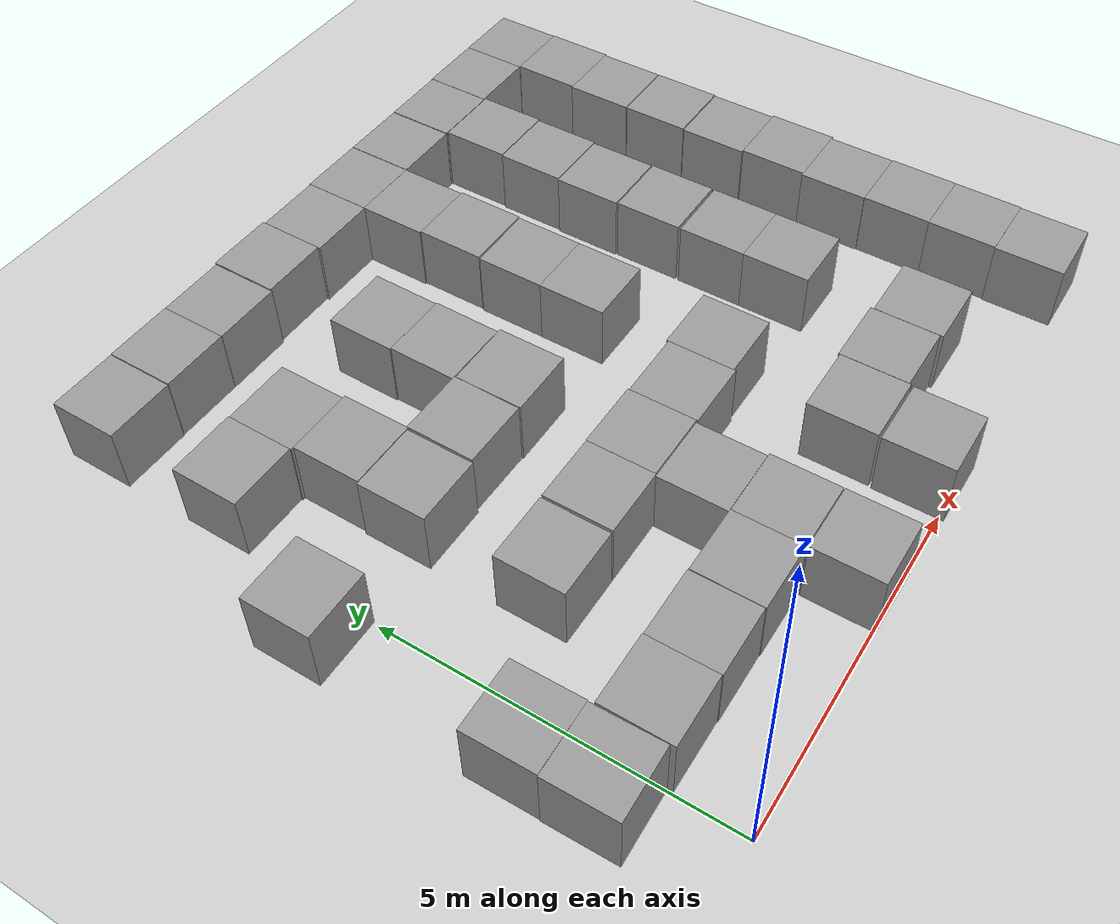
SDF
<sdf version="1.7">
 <world name="default">
  <model name="ground_plane">
   <static>1</static>
   <link name="link">
    <collision name="collision">
     <geometry><plane><normal>0 0 1</normal><size>100 100</size></plane></geometry>
     <surface><friction><ode><mu>100</mu><mu2>50</mu2></ode></friction></surface>
    </collision>
    <visual name="visual">
     <cast_shadows>0</cast_shadows>
     <geometry><plane><normal>0 0 1</normal><size>100 100</size></plane></geometry>
     <material>
      <script><uri>file://media/materials/scripts/gazebo.material</uri><name>Gazebo/Grey</name></script>
     </material>
    </visual>
   </link>
  </model>
  <model name="unit_box">
   <pose>9.53051 9.54455 0.5 0 -0 4.5e-05</pose>
   <link name="link">
    <inertial>
     <mass>1</mass>
     <inertia>
      <ixx>0.166667</ixx>
      <ixy>0</ixy>
      <ixz>0</ixz>
      <iyy>0.166667</iyy>
      <iyz>0</iyz>
      <izz>0.166667</izz>
     </inertia>
    </inertial>
    <collision name="collision"><geometry><box><size>1 1 1</size></box></geometry></collision>
    <visual name="visual">
     <geometry><box><size>1 1 1</size></box></geometry>
     <material>
      <script><name>Gazebo/Grey</name><uri>file://media/materials/scripts/gazebo.material</uri></script>
     </material>
    </visual>
   </link>
  </model>
  <model name="unit_box_0">
   <pose>8.5305 9.54105 0.5 0 -0 3.1e-05</pose>
   <link name="link">
    <inertial>
     <mass>1</mass>
     <inertia>
      <ixx>0.166667</ixx>
      <ixy>0</ixy>
      <ixz>0</ixz>
      <iyy>0.166667</iyy>
      <iyz>0</iyz>
      <izz>0.166667</izz>
     </inertia>
    </inertial>
    <collision name="collision"><geometry><box><size>1 1 1</size></box></geometry></collision>
    <visual name="visual">
     <geometry><box><size>1 1 1</size></box></geometry>
     <material>
      <script><name>Gazebo/Grey</name><uri>file://media/materials/scripts/gazebo.material</uri></script>
     </material>
    </visual>
   </link>
  </model>
  <model name="unit_box_1">
   <pose>7.52834 9.52677 0.5 0 -0 0</pose>
   <link name="link">
    <inertial>
     <mass>1</mass>
     <inertia>
      <ixx>0.166667</ixx>
      <ixy>0</ixy>
      <ixz>0</ixz>
      <iyy>0.166667</iyy>
      <iyz>0</iyz>
      <izz>0.166667</izz>
     </inertia>
    </inertial>
    <collision name="collision"><geometry><box><size>1 1 1</size></box></geometry></collision>
    <visual name="visual">
     <geometry><box><size>1 1 1</size></box></geometry>
     <material>
      <script><name>Gazebo/Grey</name><uri>file://media/materials/scripts/gazebo.material</uri></script>
     </material>
    </visual>
   </link>
  </model>
  <model name="unit_box_2">
   <pose>5.51039 9.52199 0.5 0 0 -0.000132</pose>
   <link name="link">
    <inertial>
     <mass>1</mass>
     <inertia>
      <ixx>0.166667</ixx>
      <ixy>0</ixy>
      <ixz>0</ixz>
      <iyy>0.166667</iyy>
      <iyz>0</iyz>
      <izz>0.166667</izz>
     </inertia>
    </inertial>
    <collision name="collision"><geometry><box><size>1 1 1</size></box></geometry></collision>
    <visual name="visual">
     <geometry><box><size>1 1 1</size></box></geometry>
     <material>
      <script><name>Gazebo/Grey</name><uri>file://media/materials/scripts/gazebo.material</uri></script>
     </material>
    </visual>
   </link>
  </model>
  <model name="unit_box_3">
   <pose>9.54045 8.54454 0.5 0 -0 5.8e-05</pose>
   <link name="link">
    <inertial>
     <mass>1</mass>
     <inertia>
      <ixx>0.166667</ixx>
      <ixy>0</ixy>
      <ixz>0</ixz>
      <iyy>0.166667</iyy>
      <iyz>0</iyz>
      <izz>0.166667</izz>
     </inertia>
    </inertial>
    <collision name="collision"><geometry><box><size>1 1 1</size></box></geometry></collision>
    <visual name="visual">
     <geometry><box><size>1 1 1</size></box></geometry>
     <material>
      <script><name>Gazebo/Grey</name><uri>file://media/materials/scripts/gazebo.material</uri></script>
     </material>
    </visual>
   </link>
  </model>
  <model name="unit_box_4">
   <pose>9.51774 7.54453 0.5 0 -0 4e-05</pose>
   <link name="link">
    <inertial>
     <mass>1</mass>
     <inertia>
      <ixx>0.166667</ixx>
      <ixy>0</ixy>
      <ixz>0</ixz>
      <iyy>0.166667</iyy>
      <iyz>0</iyz>
      <izz>0.166667</izz>
     </inertia>
    </inertial>
    <collision name="collision"><geometry><box><size>1 1 1</size></box></geometry></collision>
    <visual name="visual">
     <geometry><box><size>1 1 1</size></box></geometry>
     <material>
      <script><name>Gazebo/Grey</name><uri>file://media/materials/scripts/gazebo.material</uri></script>
     </material>
    </visual>
   </link>
  </model>
  <model name="unit_box_5">
   <pose>9.51835 6.53227 0.5 0 -0 0</pose>
   <link name="link">
    <inertial>
     <mass>1</mass>
     <inertia>
      <ixx>0.166667</ixx>
      <ixy>0</ixy>
      <ixz>0</ixz>
      <iyy>0.166667</iyy>
      <iyz>0</iyz>
      <izz>0.166667</izz>
     </inertia>
    </inertial>
    <collision name="collision"><geometry><box><size>1 1 1</size></box></geometry></collision>
    <visual name="visual">
     <geometry><box><size>1 1 1</size></box></geometry>
     <material>
      <script><name>Gazebo/Grey</name><uri>file://media/materials/scripts/gazebo.material</uri></script>
     </material>
    </visual>
   </link>
  </model>
  <model name="unit_box_6">
   <pose>5.50726 8.52121 0.5 0 0 -0.001691</pose>
   <link name="link">
    <inertial>
     <mass>1</mass>
     <inertia>
      <ixx>0.166667</ixx>
      <ixy>0</ixy>
      <ixz>0</ixz>
      <iyy>0.166667</iyy>
      <iyz>0</iyz>
      <izz>0.166667</izz>
     </inertia>
    </inertial>
    <collision name="collision"><geometry><box><size>1 1 1</size></box></geometry></collision>
    <visual name="visual">
     <geometry><box><size>1 1 1</size></box></geometry>
     <material>
      <script><name>Gazebo/Grey</name><uri>file://media/materials/scripts/gazebo.material</uri></script>
     </material>
    </visual>
   </link>
  </model>
  <model name="unit_box_7">
   <pose>7.55389 8.51857 0.5 0 -0 0</pose>
   <link name="link">
    <inertial>
     <mass>1</mass>
     <inertia>
      <ixx>0.166667</ixx>
      <ixy>0</ixy>
      <ixz>0</ixz>
      <iyy>0.166667</iyy>
      <iyz>0</iyz>
      <izz>0.166667</izz>
     </inertia>
    </inertial>
    <collision name="collision"><geometry><box><size>1 1 1</size></box></geometry></collision>
    <visual name="visual">
     <geometry><box><size>1 1 1</size></box></geometry>
     <material>
      <script><name>Gazebo/Grey</name><uri>file://media/materials/scripts/gazebo.material</uri></script>
     </material>
    </visual>
   </link>
  </model>
  <model name="unit_box_8">
   <pose>6.51642 9.52235 0.5 0 -0 0</pose>
   <link name="link">
    <inertial>
     <mass>1</mass>
     <inertia>
      <ixx>0.166667</ixx>
      <ixy>0</ixy>
      <ixz>0</ixz>
      <iyy>0.166667</iyy>
      <iyz>0</iyz>
      <izz>0.166667</izz>
     </inertia>
    </inertial>
    <collision name="collision"><geometry><box><size>1 1 1</size></box></geometry></collision>
    <visual name="visual">
     <geometry><box><size>1 1 1</size></box></geometry>
     <material>
      <script><name>Gazebo/Grey</name><uri>file://media/materials/scripts/gazebo.material</uri></script>
     </material>
    </visual>
   </link>
  </model>
  <model name="unit_box_9">
   <pose>7.53128 7.50762 0.5 0 -0 0</pose>
   <link name="link">
    <inertial>
     <mass>1</mass>
     <inertia>
      <ixx>0.166667</ixx>
      <ixy>0</ixy>
      <ixz>0</ixz>
      <iyy>0.166667</iyy>
      <iyz>0</iyz>
      <izz>0.166667</izz>
     </inertia>
    </inertial>
    <collision name="collision"><geometry><box><size>1 1 1</size></box></geometry></collision>
    <visual name="visual">
     <geometry><box><size>1 1 1</size></box></geometry>
     <material>
      <script><name>Gazebo/Grey</name><uri>file://media/materials/scripts/gazebo.material</uri></script>
     </material>
    </visual>
   </link>
  </model>
  <model name="unit_box_10">
   <pose>7.50856 6.49657 0.5 0 -0 0</pose>
   <link name="link">
    <inertial>
     <mass>1</mass>
     <inertia>
      <ixx>0.166667</ixx>
      <ixy>0</ixy>
      <ixz>0</ixz>
      <iyy>0.166667</iyy>
      <iyz>0</iyz>
      <izz>0.166667</izz>
     </inertia>
    </inertial>
    <collision name="collision"><geometry><box><size>1 1 1</size></box></geometry></collision>
    <visual name="visual">
     <geometry><box><size>1 1 1</size></box></geometry>
     <material>
      <script><name>Gazebo/Grey</name><uri>file://media/materials/scripts/gazebo.material</uri></script>
     </material>
    </visual>
   </link>
  </model>
  <model name="unit_box_11">
   <pose>5.52886 7.52111 0.5 0 0 -0.001804</pose>
   <link name="link">
    <inertial>
     <mass>1</mass>
     <inertia>
      <ixx>0.166667</ixx>
      <ixy>0</ixy>
      <ixz>0</ixz>
      <iyy>0.166667</iyy>
      <iyz>0</iyz>
      <izz>0.166667</izz>
     </inertia>
    </inertial>
    <collision name="collision"><geometry><box><size>1 1 1</size></box></geometry></collision>
    <visual name="visual">
     <geometry><box><size>1 1 1</size></box></geometry>
     <material>
      <script><name>Gazebo/Grey</name><uri>file://media/materials/scripts/gazebo.material</uri></script>
     </material>
    </visual>
   </link>
  </model>
  <model name="unit_box_12">
   <pose>4.50925 9.50784 0.5 -0 -0 -0.002381</pose>
   <link name="link">
    <inertial>
     <mass>1</mass>
     <inertia>
      <ixx>0.166667</ixx>
      <ixy>0</ixy>
      <ixz>0</ixz>
      <iyy>0.166667</iyy>
      <iyz>0</iyz>
      <izz>0.166667</izz>
     </inertia>
    </inertial>
    <collision name="collision"><geometry><box><size>1 1 1</size></box></geometry></collision>
    <visual name="visual">
     <geometry><box><size>1 1 1</size></box></geometry>
     <material>
      <script><name>Gazebo/Grey</name><uri>file://media/materials/scripts/gazebo.material</uri></script>
     </material>
    </visual>
   </link>
  </model>
  <model name="unit_box_13">
   <pose>5.50623 5.49299 0.5 0 0 -1.9e-05</pose>
   <link name="link">
    <inertial>
     <mass>1</mass>
     <inertia>
      <ixx>0.166667</ixx>
      <ixy>0</ixy>
      <ixz>0</ixz>
      <iyy>0.166667</iyy>
      <iyz>0</iyz>
      <izz>0.166667</izz>
     </inertia>
    </inertial>
    <collision name="collision"><geometry><box><size>1 1 1</size></box></geometry></collision>
    <visual name="visual">
     <geometry><box><size>1 1 1</size></box></geometry>
     <material>
      <script><name>Gazebo/Grey</name><uri>file://media/materials/scripts/gazebo.material</uri></script>
     </material>
    </visual>
   </link>
  </model>
  <model name="unit_box_14">
   <pose>3.4812 7.48549 0.5 0 0 -0.010022</pose>
   <link name="link">
    <inertial>
     <mass>1</mass>
     <inertia>
      <ixx>0.166667</ixx>
      <ixy>0</ixy>
      <ixz>0</ixz>
      <iyy>0.166667</iyy>
      <iyz>0</iyz>
      <izz>0.166667</izz>
     </inertia>
    </inertial>
    <collision name="collision"><geometry><box><size>1 1 1</size></box></geometry></collision>
    <visual name="visual">
     <geometry><box><size>1 1 1</size></box></geometry>
     <material>
      <script><name>Gazebo/Grey</name><uri>file://media/materials/scripts/gazebo.material</uri></script>
     </material>
    </visual>
   </link>
  </model>
  <model name="unit_box_15">
   <pose>3.48987 6.48531 0.5 0 0 -0.010022</pose>
   <link name="link">
    <inertial>
     <mass>1</mass>
     <inertia>
      <ixx>0.166667</ixx>
      <ixy>0</ixy>
      <ixz>0</ixz>
      <iyy>0.166667</iyy>
      <iyz>0</iyz>
      <izz>0.166667</izz>
     </inertia>
    </inertial>
    <collision name="collision"><geometry><box><size>1 1 1</size></box></geometry></collision>
    <visual name="visual">
     <geometry><box><size>1 1 1</size></box></geometry>
     <material>
      <script><name>Gazebo/Grey</name><uri>file://media/materials/scripts/gazebo.material</uri></script>
     </material>
    </visual>
   </link>
  </model>
  <model name="unit_box_16">
   <pose>3.50929 9.54496 0.5 0 0 -0.002316</pose>
   <link name="link">
    <inertial>
     <mass>1</mass>
     <inertia>
      <ixx>0.166667</ixx>
      <ixy>0</ixy>
      <ixz>0</ixz>
      <iyy>0.166667</iyy>
      <iyz>0</iyz>
      <izz>0.166667</izz>
     </inertia>
    </inertial>
    <collision name="collision"><geometry><box><size>1 1 1</size></box></geometry></collision>
    <visual name="visual">
     <geometry><box><size>1 1 1</size></box></geometry>
     <material>
      <script><name>Gazebo/Grey</name><uri>file://media/materials/scripts/gazebo.material</uri></script>
     </material>
    </visual>
   </link>
  </model>
  <model name="unit_box_17">
   <pose>5.50717 6.49299 0.5 0 0 -1.9e-05</pose>
   <link name="link">
    <inertial>
     <mass>1</mass>
     <inertia>
      <ixx>0.166667</ixx>
      <ixy>0</ixy>
      <ixz>0</ixz>
      <iyy>0.166667</iyy>
      <iyz>0</iyz>
      <izz>0.166667</izz>
     </inertia>
    </inertial>
    <collision name="collision"><geometry><box><size>1 1 1</size></box></geometry></collision>
    <visual name="visual">
     <geometry><box><size>1 1 1</size></box></geometry>
     <material>
      <script><name>Gazebo/Grey</name><uri>file://media/materials/scripts/gazebo.material</uri></script>
     </material>
    </visual>
   </link>
  </model>
  <model name="unit_box_18">
   <pose>3.53377 5.47451 0.5 0 -0 0.000896</pose>
   <link name="link">
    <inertial>
     <mass>1</mass>
     <inertia>
      <ixx>0.166667</ixx>
      <ixy>0</ixy>
      <ixz>0</ixz>
      <iyy>0.166667</iyy>
      <iyz>0</iyz>
      <izz>0.166667</izz>
     </inertia>
    </inertial>
    <collision name="collision"><geometry><box><size>1 1 1</size></box></geometry></collision>
    <visual name="visual">
     <geometry><box><size>1 1 1</size></box></geometry>
     <material>
      <script><name>Gazebo/Grey</name><uri>file://media/materials/scripts/gazebo.material</uri></script>
     </material>
    </visual>
   </link>
  </model>
  <model name="unit_box_19">
   <pose>2.52803 5.49531 0.5 0 0 -0.010949</pose>
   <link name="link">
    <inertial>
     <mass>1</mass>
     <inertia>
      <ixx>0.166667</ixx>
      <ixy>0</ixy>
      <ixz>0</ixz>
      <iyy>0.166667</iyy>
      <iyz>0</iyz>
      <izz>0.166667</izz>
     </inertia>
    </inertial>
    <collision name="collision"><geometry><box><size>1 1 1</size></box></geometry></collision>
    <visual name="visual">
     <geometry><box><size>1 1 1</size></box></geometry>
     <material>
      <script><name>Gazebo/Grey</name><uri>file://media/materials/scripts/gazebo.material</uri></script>
     </material>
    </visual>
   </link>
  </model>
  <model name="unit_box_20">
   <pose>1.49725 5.46583 0.5 0 -0 0</pose>
   <link name="link">
    <inertial>
     <mass>1</mass>
     <inertia>
      <ixx>0.166667</ixx>
      <ixy>0</ixy>
      <ixz>0</ixz>
      <iyy>0.166667</iyy>
      <iyz>0</iyz>
      <izz>0.166667</izz>
     </inertia>
    </inertial>
    <collision name="collision"><geometry><box><size>1 1 1</size></box></geometry></collision>
    <visual name="visual">
     <geometry><box><size>1 1 1</size></box></geometry>
     <material>
      <script><name>Gazebo/Grey</name><uri>file://media/materials/scripts/gazebo.material</uri></script>
     </material>
    </visual>
   </link>
  </model>
  <model name="unit_box_21">
   <pose>1.53008 6.47633 0.5 0 0 -0.001949</pose>
   <link name="link">
    <inertial>
     <mass>1</mass>
     <inertia>
      <ixx>0.166667</ixx>
      <ixy>0</ixy>
      <ixz>0</ixz>
      <iyy>0.166667</iyy>
      <iyz>0</iyz>
      <izz>0.166667</izz>
     </inertia>
    </inertial>
    <collision name="collision"><geometry><box><size>1 1 1</size></box></geometry></collision>
    <visual name="visual">
     <geometry><box><size>1 1 1</size></box></geometry>
     <material>
      <script><name>Gazebo/Grey</name><uri>file://media/materials/scripts/gazebo.material</uri></script>
     </material>
    </visual>
   </link>
  </model>
  <model name="unit_box_22">
   <pose>1.49099 7.47703 0.5 -0 -0 -0.000907</pose>
   <link name="link">
    <inertial>
     <mass>1</mass>
     <inertia>
      <ixx>0.166667</ixx>
      <ixy>0</ixy>
      <ixz>0</ixz>
      <iyy>0.166667</iyy>
      <iyz>0</iyz>
      <izz>0.166667</izz>
     </inertia>
    </inertial>
    <collision name="collision"><geometry><box><size>1 1 1</size></box></geometry></collision>
    <visual name="visual">
     <geometry><box><size>1 1 1</size></box></geometry>
     <material>
      <script><name>Gazebo/Grey</name><uri>file://media/materials/scripts/gazebo.material</uri></script>
     </material>
    </visual>
   </link>
  </model>
  <model name="unit_box_23">
   <pose>0.490998 7.49385 0.5 0 0 -0.0009</pose>
   <link name="link">
    <inertial>
     <mass>1</mass>
     <inertia>
      <ixx>0.166667</ixx>
      <ixy>0</ixy>
      <ixz>0</ixz>
      <iyy>0.166667</iyy>
      <iyz>0</iyz>
      <izz>0.166667</izz>
     </inertia>
    </inertial>
    <collision name="collision"><geometry><box><size>1 1 1</size></box></geometry></collision>
    <visual name="visual">
     <geometry><box><size>1 1 1</size></box></geometry>
     <material>
      <script><name>Gazebo/Grey</name><uri>file://media/materials/scripts/gazebo.material</uri></script>
     </material>
    </visual>
   </link>
  </model>
  <model name="unit_box_25">
   <pose>2.49454 9.50871 0.5 -0 -0 -1.8e-05</pose>
   <link name="link">
    <inertial>
     <mass>1</mass>
     <inertia>
      <ixx>0.166667</ixx>
      <ixy>0</ixy>
      <ixz>0</ixz>
      <iyy>0.166667</iyy>
      <iyz>0</iyz>
      <izz>0.166667</izz>
     </inertia>
    </inertial>
    <collision name="collision"><geometry><box><size>1 1 1</size></box></geometry></collision>
    <visual name="visual">
     <geometry><box><size>1 1 1</size></box></geometry>
     <material>
      <script><name>Gazebo/Grey</name><uri>file://media/materials/scripts/gazebo.material</uri></script>
     </material>
    </visual>
   </link>
  </model>
  <model name="unit_box_26">
   <pose>1.49454 9.51183 0.5 0 0 -1.7e-05</pose>
   <link name="link">
    <inertial>
     <mass>1</mass>
     <inertia>
      <ixx>0.166667</ixx>
      <ixy>0</ixy>
      <ixz>0</ixz>
      <iyy>0.166667</iyy>
      <iyz>0</iyz>
      <izz>0.166667</izz>
     </inertia>
    </inertial>
    <collision name="collision"><geometry><box><size>1 1 1</size></box></geometry></collision>
    <visual name="visual">
     <geometry><box><size>1 1 1</size></box></geometry>
     <material>
      <script><name>Gazebo/Grey</name><uri>file://media/materials/scripts/gazebo.material</uri></script>
     </material>
    </visual>
   </link>
  </model>
  <model name="unit_box_27">
   <pose>0.483935 9.50421 0.5 -0 -0 -0.000607</pose>
   <link name="link">
    <inertial>
     <mass>1</mass>
     <inertia>
      <ixx>0.166667</ixx>
      <ixy>0</ixy>
      <ixz>0</ixz>
      <iyy>0.166667</iyy>
      <iyz>0</iyz>
      <izz>0.166667</izz>
     </inertia>
    </inertial>
    <collision name="collision"><geometry><box><size>1 1 1</size></box></geometry></collision>
    <visual name="visual">
     <geometry><box><size>1 1 1</size></box></geometry>
     <material>
      <script><name>Gazebo/Grey</name><uri>file://media/materials/scripts/gazebo.material</uri></script>
     </material>
    </visual>
   </link>
  </model>
  <model name="unit_box_32">
   <pose>5.52577 3.50952 0.5 0 0 -5.5e-05</pose>
   <link name="link">
    <inertial>
     <mass>1</mass>
     <inertia>
      <ixx>0.166667</ixx>
      <ixy>0</ixy>
      <ixz>0</ixz>
      <iyy>0.166667</iyy>
      <iyz>0</iyz>
      <izz>0.166667</izz>
     </inertia>
    </inertial>
    <collision name="collision"><geometry><box><size>1 1 1</size></box></geometry></collision>
    <visual name="visual">
     <geometry><box><size>1 1 1</size></box></geometry>
     <material>
      <script><name>Gazebo/Grey</name><uri>file://media/materials/scripts/gazebo.material</uri></script>
     </material>
    </visual>
   </link>
  </model>
  <model name="unit_box_33">
   <pose>4.52576 3.47865 0.5 0 0 -5.5e-05</pose>
   <link name="link">
    <inertial>
     <mass>1</mass>
     <inertia>
      <ixx>0.166667</ixx>
      <ixy>0</ixy>
      <ixz>0</ixz>
      <iyy>0.166667</iyy>
      <iyz>0</iyz>
      <izz>0.166667</izz>
     </inertia>
    </inertial>
    <collision name="collision"><geometry><box><size>1 1 1</size></box></geometry></collision>
    <visual name="visual">
     <geometry><box><size>1 1 1</size></box></geometry>
     <material>
      <script><name>Gazebo/Grey</name><uri>file://media/materials/scripts/gazebo.material</uri></script>
     </material>
    </visual>
   </link>
  </model>
  <model name="unit_box_34">
   <pose>3.52573 3.49888 0.5 0 0 -5.7e-05</pose>
   <link name="link">
    <inertial>
     <mass>1</mass>
     <inertia>
      <ixx>0.166667</ixx>
      <ixy>0</ixy>
      <ixz>0</ixz>
      <iyy>0.166667</iyy>
      <iyz>0</iyz>
      <izz>0.166667</izz>
     </inertia>
    </inertial>
    <collision name="collision"><geometry><box><size>1 1 1</size></box></geometry></collision>
    <visual name="visual">
     <geometry><box><size>1 1 1</size></box></geometry>
     <material>
      <script><name>Gazebo/Grey</name><uri>file://media/materials/scripts/gazebo.material</uri></script>
     </material>
    </visual>
   </link>
  </model>
  <model name="unit_box_35">
   <pose>2.52569 3.49064 0.5 0 0 -5.7e-05</pose>
   <link name="link">
    <inertial>
     <mass>1</mass>
     <inertia>
      <ixx>0.166667</ixx>
      <ixy>0</ixy>
      <ixz>0</ixz>
      <iyy>0.166667</iyy>
      <iyz>0</iyz>
      <izz>0.166667</izz>
     </inertia>
    </inertial>
    <collision name="collision"><geometry><box><size>1 1 1</size></box></geometry></collision>
    <visual name="visual">
     <geometry><box><size>1 1 1</size></box></geometry>
     <material>
      <script><name>Gazebo/Grey</name><uri>file://media/materials/scripts/gazebo.material</uri></script>
     </material>
    </visual>
   </link>
  </model>
  <model name="unit_box_36">
   <pose>1.49223 3.48855 0.5 0 -0 0</pose>
   <link name="link">
    <inertial>
     <mass>1</mass>
     <inertia>
      <ixx>0.166667</ixx>
      <ixy>0</ixy>
      <ixz>0</ixz>
      <iyy>0.166667</iyy>
      <iyz>0</iyz>
      <izz>0.166667</izz>
     </inertia>
    </inertial>
    <collision name="collision"><geometry><box><size>1 1 1</size></box></geometry></collision>
    <visual name="visual">
     <geometry><box><size>1 1 1</size></box></geometry>
     <material>
      <script><name>Gazebo/Grey</name><uri>file://media/materials/scripts/gazebo.material</uri></script>
     </material>
    </visual>
   </link>
  </model>
  <model name="unit_box_37">
   <pose>3.48857 2.48305 0.5 0 -0 -0.000498</pose>
   <link name="link">
    <inertial>
     <mass>1</mass>
     <inertia>
      <ixx>0.166667</ixx>
      <ixy>0</ixy>
      <ixz>0</ixz>
      <iyy>0.166667</iyy>
      <iyz>0</iyz>
      <izz>0.166667</izz>
     </inertia>
    </inertial>
    <collision name="collision"><geometry><box><size>1 1 1</size></box></geometry></collision>
    <visual name="visual">
     <geometry><box><size>1 1 1</size></box></geometry>
     <material>
      <script><name>Gazebo/Grey</name><uri>file://media/materials/scripts/gazebo.material</uri></script>
     </material>
    </visual>
   </link>
  </model>
  <model name="unit_box_38">
   <pose>3.52867 1.4796 0.5 0 0 -6.3e-05</pose>
   <link name="link">
    <inertial>
     <mass>1</mass>
     <inertia>
      <ixx>0.166667</ixx>
      <ixy>0</ixy>
      <ixz>0</ixz>
      <iyy>0.166667</iyy>
      <iyz>0</iyz>
      <izz>0.166667</izz>
     </inertia>
    </inertial>
    <collision name="collision"><geometry><box><size>1 1 1</size></box></geometry></collision>
    <visual name="visual">
     <geometry><box><size>1 1 1</size></box></geometry>
     <material>
      <script><name>Gazebo/Grey</name><uri>file://media/materials/scripts/gazebo.material</uri></script>
     </material>
    </visual>
   </link>
  </model>
  <model name="unit_box_39">
   <pose>2.52867 1.48331 0.5 0 -0 -6.4e-05</pose>
   <link name="link">
    <inertial>
     <mass>1</mass>
     <inertia>
      <ixx>0.166667</ixx>
      <ixy>0</ixy>
      <ixz>0</ixz>
      <iyy>0.166667</iyy>
      <iyz>0</iyz>
      <izz>0.166667</izz>
     </inertia>
    </inertial>
    <collision name="collision"><geometry><box><size>1 1 1</size></box></geometry></collision>
    <visual name="visual">
     <geometry><box><size>1 1 1</size></box></geometry>
     <material>
      <script><name>Gazebo/Grey</name><uri>file://media/materials/scripts/gazebo.material</uri></script>
     </material>
    </visual>
   </link>
  </model>
  <model name="unit_box_40">
   <pose>1.52252 1.49038 0.5 0 -0 0.005113</pose>
   <link name="link">
    <inertial>
     <mass>1</mass>
     <inertia>
      <ixx>0.166667</ixx>
      <ixy>0</ixy>
      <ixz>0</ixz>
      <iyy>0.166667</iyy>
      <iyz>0</iyz>
      <izz>0.166667</izz>
     </inertia>
    </inertial>
    <collision name="collision"><geometry><box><size>1 1 1</size></box></geometry></collision>
    <visual name="visual">
     <geometry><box><size>1 1 1</size></box></geometry>
     <material>
      <script><name>Gazebo/Grey</name><uri>file://media/materials/scripts/gazebo.material</uri></script>
     </material>
    </visual>
   </link>
  </model>
  <model name="unit_box_41">
   <pose>0.522453 1.49557 0.5 0 -0 0.005069</pose>
   <link name="link">
    <inertial>
     <mass>1</mass>
     <inertia>
      <ixx>0.166667</ixx>
      <ixy>0</ixy>
      <ixz>0</ixz>
      <iyy>0.166667</iyy>
      <iyz>0</iyz>
      <izz>0.166667</izz>
     </inertia>
    </inertial>
    <collision name="collision"><geometry><box><size>1 1 1</size></box></geometry></collision>
    <visual name="visual">
     <geometry><box><size>1 1 1</size></box></geometry>
     <material>
      <script><name>Gazebo/Grey</name><uri>file://media/materials/scripts/gazebo.material</uri></script>
     </material>
    </visual>
   </link>
  </model>
  <model name="unit_box_42">
   <pose>-0.49519 1.55293 0.5 0 -0 0.022818</pose>
   <link name="link">
    <inertial>
     <mass>1</mass>
     <inertia>
      <ixx>0.166667</ixx>
      <ixy>0</ixy>
      <ixz>0</ixz>
      <iyy>0.166667</iyy>
      <iyz>0</iyz>
      <izz>0.166667</izz>
     </inertia>
    </inertial>
    <collision name="collision"><geometry><box><size>1 1 1</size></box></geometry></collision>
    <visual name="visual">
     <geometry><box><size>1 1 1</size></box></geometry>
     <material>
      <script><name>Gazebo/Grey</name><uri>file://media/materials/scripts/gazebo.material</uri></script>
     </material>
    </visual>
   </link>
  </model>
  <model name="unit_box_43">
   <pose>-0.504213 2.55469 0.5 0 -0 0.019391</pose>
   <link name="link">
    <inertial>
     <mass>1</mass>
     <inertia>
      <ixx>0.166667</ixx>
      <ixy>0</ixy>
      <ixz>0</ixz>
      <iyy>0.166667</iyy>
      <iyz>0</iyz>
      <izz>0.166667</izz>
     </inertia>
    </inertial>
    <collision name="collision"><geometry><box><size>1 1 1</size></box></geometry></collision>
    <visual name="visual">
     <geometry><box><size>1 1 1</size></box></geometry>
     <material>
      <script><name>Gazebo/Grey</name><uri>file://media/materials/scripts/gazebo.material</uri></script>
     </material>
    </visual>
   </link>
  </model>
  <model name="unit_box_46">
   <pose>-0.47556 5.57724 0.5 0 -0 0.006725</pose>
   <link name="link">
    <inertial>
     <mass>1</mass>
     <inertia>
      <ixx>0.166667</ixx>
      <ixy>0</ixy>
      <ixz>0</ixz>
      <iyy>0.166667</iyy>
      <iyz>0</iyz>
      <izz>0.166667</izz>
     </inertia>
    </inertial>
    <collision name="collision"><geometry><box><size>1 1 1</size></box></geometry></collision>
    <visual name="visual">
     <geometry><box><size>1 1 1</size></box></geometry>
     <material>
      <script><name>Gazebo/Grey</name><uri>file://media/materials/scripts/gazebo.material</uri></script>
     </material>
    </visual>
   </link>
  </model>
  <model name="unit_box_47">
   <pose>3.52988 0.465657 0.5 0 -0 0</pose>
   <link name="link">
    <inertial>
     <mass>1</mass>
     <inertia>
      <ixx>0.166667</ixx>
      <ixy>0</ixy>
      <ixz>0</ixz>
      <iyy>0.166667</iyy>
      <iyz>0</iyz>
      <izz>0.166667</izz>
     </inertia>
    </inertial>
    <collision name="collision"><geometry><box><size>1 1 1</size></box></geometry></collision>
    <visual name="visual">
     <geometry><box><size>1 1 1</size></box></geometry>
     <material>
      <script><name>Gazebo/Grey</name><uri>file://media/materials/scripts/gazebo.material</uri></script>
     </material>
    </visual>
   </link>
  </model>
  <model name="unit_box_48">
   <pose>7.52212 5.47616 0.5 0 -0 0</pose>
   <link name="link">
    <inertial>
     <mass>1</mass>
     <inertia>
      <ixx>0.166667</ixx>
      <ixy>0</ixy>
      <ixz>0</ixz>
      <iyy>0.166667</iyy>
      <iyz>0</iyz>
      <izz>0.166667</izz>
     </inertia>
    </inertial>
    <collision name="collision"><geometry><box><size>1 1 1</size></box></geometry></collision>
    <visual name="visual">
     <geometry><box><size>1 1 1</size></box></geometry>
     <material>
      <script><name>Gazebo/Grey</name><uri>file://media/materials/scripts/gazebo.material</uri></script>
     </material>
    </visual>
   </link>
  </model>
  <model name="unit_box_49">
   <pose>7.52036 4.43656 0.5 0 -0 5e-06</pose>
   <link name="link">
    <inertial>
     <mass>1</mass>
     <inertia>
      <ixx>0.166667</ixx>
      <ixy>0</ixy>
      <ixz>0</ixz>
      <iyy>0.166667</iyy>
      <iyz>0</iyz>
      <izz>0.166667</izz>
     </inertia>
    </inertial>
    <collision name="collision"><geometry><box><size>1 1 1</size></box></geometry></collision>
    <visual name="visual">
     <geometry><box><size>1 1 1</size></box></geometry>
     <material>
      <script><name>Gazebo/Grey</name><uri>file://media/materials/scripts/gazebo.material</uri></script>
     </material>
    </visual>
   </link>
  </model>
  <model name="unit_box_50">
   <pose>7.52026 3.43655 0.5 0 -0 0</pose>
   <link name="link">
    <inertial>
     <mass>1</mass>
     <inertia>
      <ixx>0.166667</ixx>
      <ixy>0</ixy>
      <ixz>0</ixz>
      <iyy>0.166667</iyy>
      <iyz>0</iyz>
      <izz>0.166667</izz>
     </inertia>
    </inertial>
    <collision name="collision"><geometry><box><size>1 1 1</size></box></geometry></collision>
    <visual name="visual">
     <geometry><box><size>1 1 1</size></box></geometry>
     <material>
      <script><name>Gazebo/Grey</name><uri>file://media/materials/scripts/gazebo.material</uri></script>
     </material>
    </visual>
   </link>
  </model>
  <model name="unit_box_51">
   <pose>7.50023 1.44837 0.5 0 -0 0</pose>
   <link name="link">
    <inertial>
     <mass>1</mass>
     <inertia>
      <ixx>0.166667</ixx>
      <ixy>0</ixy>
      <ixz>0</ixz>
      <iyy>0.166667</iyy>
      <iyz>0</iyz>
      <izz>0.166667</izz>
     </inertia>
    </inertial>
    <collision name="collision"><geometry><box><size>1 1 1</size></box></geometry></collision>
    <visual name="visual">
     <geometry><box><size>1 1 1</size></box></geometry>
     <material>
      <script><name>Gazebo/Grey</name><uri>file://media/materials/scripts/gazebo.material</uri></script>
     </material>
    </visual>
   </link>
  </model>
  <model name="unit_box_52">
   <pose>6.49881 1.49368 0.5 0 -0 0</pose>
   <link name="link">
    <inertial>
     <mass>1</mass>
     <inertia>
      <ixx>0.166667</ixx>
      <ixy>0</ixy>
      <ixz>0</ixz>
      <iyy>0.166667</iyy>
      <iyz>0</iyz>
      <izz>0.166667</izz>
     </inertia>
    </inertial>
    <collision name="collision"><geometry><box><size>1 1 1</size></box></geometry></collision>
    <visual name="visual">
     <geometry><box><size>1 1 1</size></box></geometry>
     <material>
      <script><name>Gazebo/Grey</name><uri>file://media/materials/scripts/gazebo.material</uri></script>
     </material>
    </visual>
   </link>
  </model>
  <model name="unit_box_53">
   <pose>5.49618 1.4669 0.5 0 -0 0</pose>
   <link name="link">
    <inertial>
     <mass>1</mass>
     <inertia>
      <ixx>0.166667</ixx>
      <ixy>0</ixy>
      <ixz>0</ixz>
      <iyy>0.166667</iyy>
      <iyz>0</iyz>
      <izz>0.166667</izz>
     </inertia>
    </inertial>
    <collision name="collision"><geometry><box><size>1 1 1</size></box></geometry></collision>
    <visual name="visual">
     <geometry><box><size>1 1 1</size></box></geometry>
     <material>
      <script><name>Gazebo/Grey</name><uri>file://media/materials/scripts/gazebo.material</uri></script>
     </material>
    </visual>
   </link>
  </model>
  <model name="unit_box_55">
   <pose>5.47886 0.428025 0.5 0 -0 0</pose>
   <link name="link">
    <inertial>
     <mass>1</mass>
     <inertia>
      <ixx>0.166667</ixx>
      <ixy>0</ixy>
      <ixz>0</ixz>
      <iyy>0.166667</iyy>
      <iyz>0</iyz>
      <izz>0.166667</izz>
     </inertia>
    </inertial>
    <collision name="collision"><geometry><box><size>1 1 1</size></box></geometry></collision>
    <visual name="visual">
     <geometry><box><size>1 1 1</size></box></geometry>
     <material>
      <script><name>Gazebo/Grey</name><uri>file://media/materials/scripts/gazebo.material</uri></script>
     </material>
    </visual>
   </link>
  </model>
  <model name="unit_box_59">
   <pose>9.50159 5.5125 0.5 0 0 -0.000522</pose>
   <link name="link">
    <inertial>
     <mass>1</mass>
     <inertia>
      <ixx>0.166667</ixx>
      <ixy>0</ixy>
      <ixz>0</ixz>
      <iyy>0.166667</iyy>
      <iyz>0</iyz>
      <izz>0.166667</izz>
     </inertia>
    </inertial>
    <collision name="collision"><geometry><box><size>1 1 1</size></box></geometry></collision>
    <visual name="visual">
     <geometry><box><size>1 1 1</size></box></geometry>
     <material>
      <script><name>Gazebo/Grey</name><uri>file://media/materials/scripts/gazebo.material</uri></script>
     </material>
    </visual>
   </link>
  </model>
  <model name="unit_box_60">
   <pose>9.53612 4.51248 0.5 0 -0 -0.000522</pose>
   <link name="link">
    <inertial>
     <mass>1</mass>
     <inertia>
      <ixx>0.166667</ixx>
      <ixy>0</ixy>
      <ixz>0</ixz>
      <iyy>0.166667</iyy>
      <iyz>0</iyz>
      <izz>0.166667</izz>
     </inertia>
    </inertial>
    <collision name="collision"><geometry><box><size>1 1 1</size></box></geometry></collision>
    <visual name="visual">
     <geometry><box><size>1 1 1</size></box></geometry>
     <material>
      <script><name>Gazebo/Grey</name><uri>file://media/materials/scripts/gazebo.material</uri></script>
     </material>
    </visual>
   </link>
  </model>
  <model name="unit_box_61">
   <pose>9.49871 3.5125 0.5 0 0 -0.00052</pose>
   <link name="link">
    <inertial>
     <mass>1</mass>
     <inertia>
      <ixx>0.166667</ixx>
      <ixy>0</ixy>
      <ixz>0</ixz>
      <iyy>0.166667</iyy>
      <iyz>0</iyz>
      <izz>0.166667</izz>
     </inertia>
    </inertial>
    <collision name="collision"><geometry><box><size>1 1 1</size></box></geometry></collision>
    <visual name="visual">
     <geometry><box><size>1 1 1</size></box></geometry>
     <material>
      <script><name>Gazebo/Grey</name><uri>file://media/materials/scripts/gazebo.material</uri></script>
     </material>
    </visual>
   </link>
  </model>
  <model name="unit_box_62">
   <pose>9.50977 2.51249 0.5 0 0 -0.000515</pose>
   <link name="link">
    <inertial>
     <mass>1</mass>
     <inertia>
      <ixx>0.166667</ixx>
      <ixy>0</ixy>
      <ixz>0</ixz>
      <iyy>0.166667</iyy>
      <iyz>0</iyz>
      <izz>0.166667</izz>
     </inertia>
    </inertial>
    <collision name="collision"><geometry><box><size>1 1 1</size></box></geometry></collision>
    <visual name="visual">
     <geometry><box><size>1 1 1</size></box></geometry>
     <material>
      <script><name>Gazebo/Grey</name><uri>file://media/materials/scripts/gazebo.material</uri></script>
     </material>
    </visual>
   </link>
  </model>
  <model name="unit_box_63">
   <pose>9.50507 1.51248 0.5 0 0 -0.000489</pose>
   <link name="link">
    <inertial>
     <mass>1</mass>
     <inertia>
      <ixx>0.166667</ixx>
      <ixy>0</ixy>
      <ixz>0</ixz>
      <iyy>0.166667</iyy>
      <iyz>0</iyz>
      <izz>0.166667</izz>
     </inertia>
    </inertial>
    <collision name="collision"><geometry><box><size>1 1 1</size></box></geometry></collision>
    <visual name="visual">
     <geometry><box><size>1 1 1</size></box></geometry>
     <material>
      <script><name>Gazebo/Grey</name><uri>file://media/materials/scripts/gazebo.material</uri></script>
     </material>
    </visual>
   </link>
  </model>
  <model name="unit_box_64">
   <pose>9.48842 0.512421 0.5 0 0 -0.00035</pose>
   <link name="link">
    <inertial>
     <mass>1</mass>
     <inertia>
      <ixx>0.166667</ixx>
      <ixy>0</ixy>
      <ixz>0</ixz>
      <iyy>0.166667</iyy>
      <iyz>0</iyz>
      <izz>0.166667</izz>
     </inertia>
    </inertial>
    <collision name="collision"><geometry><box><size>1 1 1</size></box></geometry></collision>
    <visual name="visual">
     <geometry><box><size>1 1 1</size></box></geometry>
     <material>
      <script><name>Gazebo/Grey</name><uri>file://media/materials/scripts/gazebo.material</uri></script>
     </material>
    </visual>
   </link>
  </model>
 </world>
</sdf>
